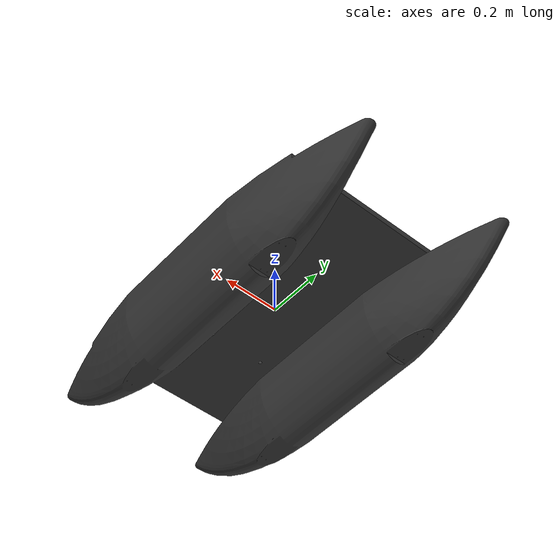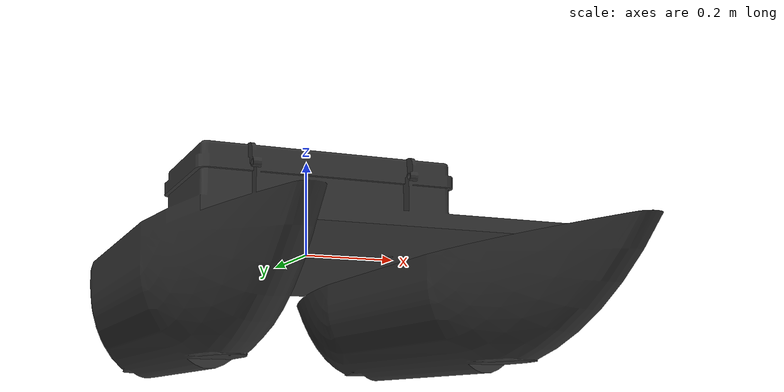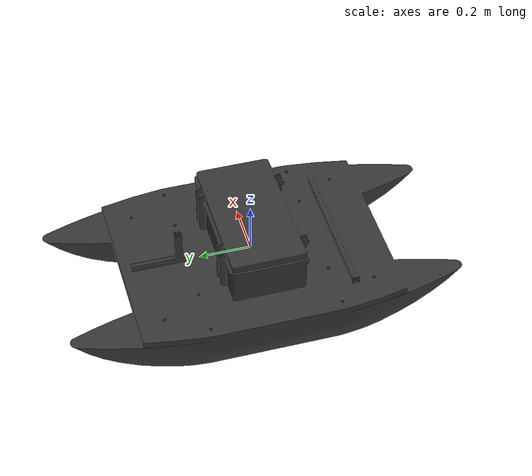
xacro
<?xml version="1.0"?>

<robot name="roboboat" xmlns:xacro="http://www.ros.org/wiki/xacro" >
  <xacro:arg name="debug" default="0"/>
  <xacro:arg name="namespace" default=""/>
  <xacro:arg name="suffix_ns" default="$(arg namespace)"/>

  <!-- Include the ROV macro file -->
  <xacro:include filename="$(find roboboat_description)/urdf/base.xacro"/>
  <xacro:include filename="$(find roboboat_description)/urdf/gazebo.xacro"/>

  <!-- Create the roboboat -->
  <xacro:roboboat_base namespace="$(arg suffix_ns)">
    <!-- The underwater object plugin is given as an input block parameter to
     allow the addition of external models of manipulator units -->
    <gazebo>
      <plugin name="uuv_plugin" filename="libuuv_underwater_object_ros_plugin.so">
        <fluid_density>1000.0</fluid_density>
        <flow_velocity_topic>hydrodynamics/current_velocity</flow_velocity_topic>
        <debug>$(arg debug)</debug>
        <!-- Adding the hydrodynamic and hydrostatic parameters for the vehicle-->
        <xacro:roboboat_hydro_model namespace="$(arg suffix_ns)" />
      </plugin>

    </gazebo>

  </xacro:roboboat_base>

  <!-- Joint state publisher plugin -->
  <gazebo>
    <plugin name="joint_state_publisher" filename="libuuv_joint_state_publisher.so">
      <robotNamespace>/$(arg namespace)</robotNamespace>
      <updateRate>10</updateRate>
    </plugin>
  </gazebo>

</robot>

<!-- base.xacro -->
<robot xmlns:xacro="http://www.ros.org/wiki/xacro">
  <!--
    Vehicle's parameters (remember to enter the model parameters below)
  -->

  <xacro:property name="mass" value="31.76"/>
  <!-- Center of gravity -->
  <xacro:property name="cog" value="0 0 -0.13"/> <!-- TODO: Check this value -->
  <!-- Fluid density -->
  <xacro:property name="rho" value="1000"/>

  <!-- Loading vehicle's specific macros -->

  <material name="gray"><color rgba="0.7 0.7 0.7 1.0"/></material>
  <material name="dark_gray"><color rgba="0.2 0.2 0.2 1.0"/></material>
  <material name="yellow"><color rgba="0.8 0.8 0.0 1.0"/></material>

  <!-- Vehicle macro -->
  <xacro:macro name="roboboat_base" params="namespace *gazebo">

      <!-- Rigid body description of the base link -->
      <link name="${namespace}base_link">
        <!--
          Be careful to setup the coefficients for the inertial tensor,
          otherwise your model will become unstable on Gazebo
        -->

        <visual>
          <origin xyz="0 0 0" rpy="0 0 0"/>
          <geometry>
            <mesh filename="package://roboboat_description/meshes/base_link.STL" scale="1 1 1" />
          </geometry>
          <material name="dark_gray" />
        </visual>

        <collision>
          <origin xyz="0 0 0" rpy="0 0 0"/>
          <geometry>
            <mesh filename="package://roboboat_description/meshes/base_link.STL" scale="1 1 1" />
          </geometry>
        </collision>
      </link>

      <!-- Dummy Link to contain the inertial information for base_link -->
      <link name="${namespace}dummy_link">
        <inertial>
          <mass value="${mass}" />
          <origin xyz="${cog}" rpy="0 0 0"/>
          <inertia ixx="10" ixy="0" iyy = "10" ixz="0" iyz="0" izz="10" />

        </inertial>
      </link>

      <joint name="dummy_to_base" type="fixed">
        <parent link="${namespace}base_link" />
        <child link="${namespace}dummy_link" />
      </joint>

    <gazebo reference="${namespace}base_link">
      <selfCollide>false</selfCollide>
      <material>Gazebo/DarkGrey</material>
      <gravity>1</gravity>
    </gazebo>

    <!-- Set up hydrodynamic plugin given as input parameter -->
    <xacro:insert_block name="gazebo"/>

    <!-- Include the thruster modules -->

    <!-- Include the sensor modules -->
    <xacro:include filename="$(find roboboat_description)/urdf/sensors.xacro"/>

    <!-- Optional custom includes. -->
    <xacro:include filename="$(optenv roboboat_URDF_EXTRAS empty.urdf)" />

  </xacro:macro>

</robot>

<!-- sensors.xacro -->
<robot xmlns:xacro="http://www.ros.org/wiki/xacro">

  <!-- GPS -->
  <gazebo>
    <plugin name="gps_controller" filename="libhector_gazebo_ros_gps.so">
      <updateRate>40</updateRate>
      <robotNamespace>/$(arg namespace)</robotNamespace>
      <frameId>$(arg suffix_ns)navsat_link</frameId>
      <bodyName>$(arg suffix_ns)navsat_link</bodyName>
      <topicName>/$(arg suffix_ns)navsat/fix</topicName>
      <velocityTopicName>/$(arg suffix_ns)navsat/velocity</velocityTopicName>
      <referenceLatitude>49.9</referenceLatitude>
      <referenceLongitude>8.9</referenceLongitude>
      <referenceHeading>90</referenceHeading>
      <referenceAltitude>0</referenceAltitude>
      <drift>0.0001 0.0001 0.0001</drift>
    </plugin>
  </gazebo>
  <link name="$(arg suffix_ns)navsat_link" />

  <joint name="navsat_joint" type="fixed">
    <parent link="$(arg suffix_ns)base_link" />
    <child link="$(arg suffix_ns)navsat_link" />
    <origin xyz="$(optenv ROBOBOAT_NAVSAT_UBLOX_XYZ 0.015 0.050 0.072)"
      rpy="$(optenv ROBOBOAT_NAVSAT_UBLOX_RPY 0.0 0.0 0.0)" />
    </joint>

    <!-- IMU -->
    <gazebo>
      <plugin name="imu_controller" filename="libhector_gazebo_ros_imu.so">
        <robotNamespace>/$(arg namespace)</robotNamespace>
        <updateRate>50.0</updateRate>
        <bodyName>$(arg suffix_ns)imu_link</bodyName>
        <frameId>$(arg suffix_ns)imu_link</frameId>
        <topicName>/$(arg suffix_ns)imu/data_raw</topicName>
        <accelDrift>0.005 0.005 0.005</accelDrift>
        <accelGaussianNoise>0.005 0.005 0.005</accelGaussianNoise>
        <rateDrift>0.005 0.005 0.005 </rateDrift>
        <rateGaussianNoise>0.005 0.005 0.005 </rateGaussianNoise>
        <headingDrift>0.005</headingDrift>
        <headingGaussianNoise>0.005</headingGaussianNoise>
      </plugin>
    </gazebo>

    <link name="$(arg suffix_ns)imu_link" />
    <joint name="$(arg suffix_ns)imu_joint" type="fixed">
      <origin xyz="$(optenv ROBOBOAT_IMU_UM6_XYZ -0.1397 0.0 0)" rpy="$(optenv ROBOBOAT_IMU_UM6_RPY 0 0.0 0.0)" />
      <parent link="$(arg suffix_ns)base_link" />
      <child link="$(arg suffix_ns)imu_link" />
    </joint>

    <!-- Magnetometer -->
    <gazebo>
      <plugin name="mag_controller" filename="libhector_gazebo_ros_magnetic.so">
        <updateRate>50</updateRate>
        <robotNamespace>/$(arg namespace)</robotNamespace>
        <bodyName>$(arg suffix_ns)imu_link</bodyName>
        <frameId>$(arg suffix_ns)imu_link</frameId>
        <topicName>/$(arg suffix_ns)imu/mag</topicName>
        <referenceHeading>90</referenceHeading>
        <drift>0.0005 0.0005 0.0005</drift>
        <gaussianNoise>0.025 0.025 0.025</gaussianNoise>
      </plugin>
    </gazebo>

    <!-- Mount a Perfect Pose 3D sensor. -->
    <gazebo>
      <plugin filename="libgazebo_ros_p3d.so" name="groundtruth_sim">
        <updateRate>20.0</updateRate>
        <robotNamespace>/$(arg namespace)</robotNamespace>
        <bodyName>$(arg suffix_ns)base_link</bodyName>
        <topicName>/$(arg suffix_ns)pose_gt</topicName>
        <gaussianNoise>0.0</gaussianNoise>
        <frameName>world</frameName>
      </plugin>
    </gazebo>

  </robot>
